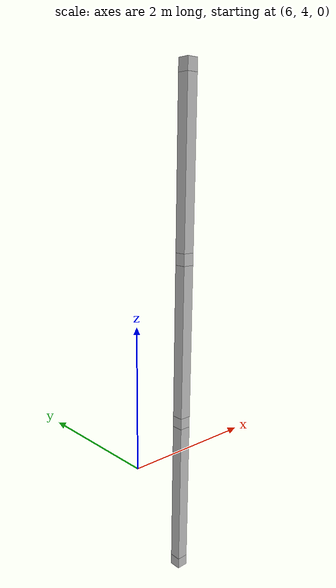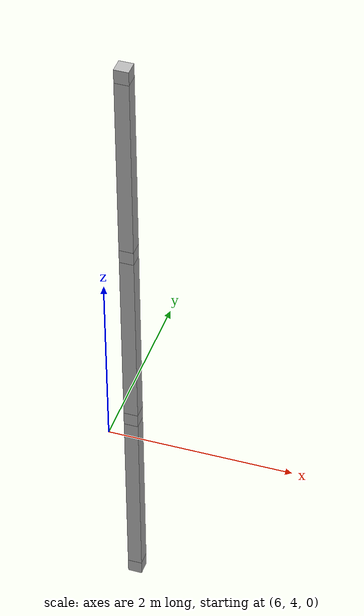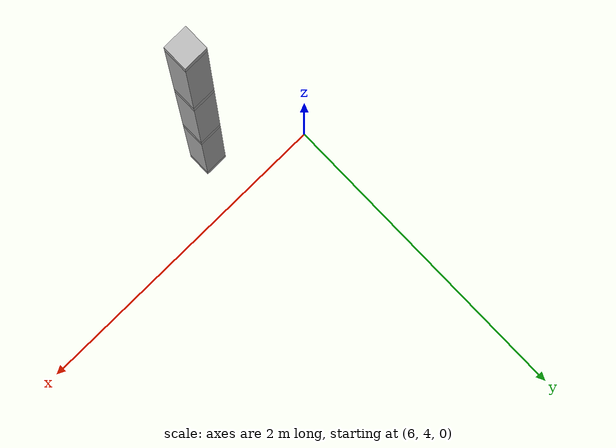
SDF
<sdf version="1.7">
 <world name="default">
  <model name="orthogonal_747_2.000.15_TS">
   <static>1</static>
   <link name="u_link_0_4_6">
    <inertial>
     <mass>1</mass>
     <inertia>
      <ixx>0.166667</ixx>
      <ixy>0</ixy>
      <ixz>0</ixz>
      <iyy>0.166667</iyy>
      <iyz>0</iyz>
      <izz>0.166667</izz>
     </inertia>
    </inertial>
    <pose>12.9 8.6 1.075 0 -0 0</pose>
    <visual name="visual_0">
     <laser_retro>736</laser_retro>
     <geometry><box><size>0.15 1e-06 0.15</size></box></geometry>
     <material>
      <script><name>Gazebo/Grey</name><uri>file://media/materials/scripts/gazebo.material</uri></script>
      <shader type="pixel"><normal_map>__default__</normal_map></shader>
      <ambient>0.678 0.498 0.659 1</ambient>
      <diffuse>0.7 0.7 0.7 1</diffuse>
      <specular>0.01 0.01 0.01 1</specular>
      <emissive>0 0 0 1</emissive>
     </material>
     <pose>0 -0.075 0 0 -0 0</pose>
     <transparency>1</transparency>
    </visual>
    <visual name="visual_1">
     <laser_retro>737</laser_retro>
     <geometry><box><size>0.15 1e-06 0.15</size></box></geometry>
     <material>
      <script><name>Gazebo/Grey</name><uri>file://media/materials/scripts/gazebo.material</uri></script>
      <shader type="pixel"><normal_map>__default__</normal_map></shader>
      <ambient>0.447 0.624 0.812 1</ambient>
      <diffuse>0.7 0.7 0.7 1</diffuse>
      <specular>0.01 0.01 0.01 1</specular>
      <emissive>0 0 0 1</emissive>
     </material>
     <pose>0 0.075 0 0 -0 0</pose>
     <transparency>1</transparency>
    </visual>
    <visual name="visual_2">
     <laser_retro>738</laser_retro>
     <geometry><box><size>0.15 0.15 1e-06</size></box></geometry>
     <material>
      <script><name>Gazebo/Grey</name><uri>file://media/materials/scripts/gazebo.material</uri></script>
      <shader type="pixel"><normal_map>__default__</normal_map></shader>
      <ambient>0.988 0.686 0.243 1</ambient>
      <diffuse>0.7 0.7 0.7 1</diffuse>
      <specular>0.01 0.01 0.01 1</specular>
      <emissive>0 0 0 1</emissive>
     </material>
     <pose>0 0 -0.075 0 -0 0</pose>
     <transparency>1</transparency>
    </visual>
    <visual name="visual_3">
     <laser_retro>739</laser_retro>
     <geometry><box><size>1e-06 0.15 0.15</size></box></geometry>
     <material>
      <script><name>Gazebo/Grey</name><uri>file://media/materials/scripts/gazebo.material</uri></script>
      <shader type="pixel"><normal_map>__default__</normal_map></shader>
      <ambient>0.988 0.914 0.31 1</ambient>
      <diffuse>0.7 0.7 0.7 1</diffuse>
      <specular>0.01 0.01 0.01 1</specular>
      <emissive>0 0 0 1</emissive>
     </material>
     <pose>0.075 0 0 0 -0 0</pose>
     <transparency>1</transparency>
    </visual>
    <visual name="visual_4">
     <laser_retro>740</laser_retro>
     <geometry><box><size>0.15 0.15 1e-06</size></box></geometry>
     <material>
      <script><name>Gazebo/Grey</name><uri>file://media/materials/scripts/gazebo.material</uri></script>
      <shader type="pixel"><normal_map>__default__</normal_map></shader>
      <ambient>0.937 0.161 0.161 1</ambient>
      <diffuse>0.7 0.7 0.7 1</diffuse>
      <specular>0.01 0.01 0.01 1</specular>
      <emissive>0 0 0 1</emissive>
     </material>
     <pose>0 0 0.075 0 -0 0</pose>
     <transparency>1</transparency>
    </visual>
    <visual name="visual_5">
     <laser_retro>741</laser_retro>
     <geometry><box><size>1e-06 0.15 0.15</size></box></geometry>
     <material>
      <script><name>Gazebo/Grey</name><uri>file://media/materials/scripts/gazebo.material</uri></script>
      <shader type="pixel"><normal_map>__default__</normal_map></shader>
      <ambient>0.541 0.886 0.204 1</ambient>
      <diffuse>0.7 0.7 0.7 1</diffuse>
      <specular>0.01 0.01 0.01 1</specular>
      <emissive>0 0 0 1</emissive>
     </material>
     <pose>-0.075 0 0 0 -0 0</pose>
     <transparency>1</transparency>
    </visual>
    <visual name="visual_texture">
     <geometry><box><size>0.149985 0.149985 0.149985</size></box></geometry>
     <material>
      <script>
       <uri>model://BASE_MODELS/simple_block_v2_textured/materials/scripts</uri>
       <uri>model://BASE_MODELS/simple_block_v2_textured/materials/textures</uri>
       <name>metal</name>
      </script>
     </material>
     <laser_retro>742</laser_retro>
    </visual>
    <collision name="collision">
     <geometry><box><size>0.15 0.15 0.15</size></box></geometry>
     <surface>
      <friction>
       <ode><mu>1</mu><mu2>1</mu2><fdir1>0 0 0</fdir1><slip1>0</slip1><slip2>0</slip2></ode>
       <torsional>
        <coefficient>1</coefficient>
        <patch_radius>0</patch_radius>
        <surface_radius>0</surface_radius>
        <use_patch_radius>1</use_patch_radius>
        <ode><slip>0</slip></ode>
       </torsional>
      </friction>
      <bounce><restitution_coefficient>0</restitution_coefficient><threshold>1e+06</threshold></bounce>
      <contact>
       <collide_without_contact>0</collide_without_contact>
       <collide_without_contact_bitmask>1</collide_without_contact_bitmask>
       <collide_bitmask>1</collide_bitmask>
       <ode>
        <soft_cfm>0</soft_cfm>
        <soft_erp>0.2</soft_erp>
        <kp>1e+13</kp>
        <kd>1</kd>
        <max_vel>0.01</max_vel>
        <min_depth>0</min_depth>
       </ode>
       <bullet>
        <split_impulse>1</split_impulse>
        <split_impulse_penetration_threshold>-0.01</split_impulse_penetration_threshold>
        <soft_cfm>0</soft_cfm>
        <soft_erp>0.2</soft_erp>
        <kp>1e+13</kp>
        <kd>1</kd>
       </bullet>
      </contact>
     </surface>
    </collision>
   </link>
   <link name="u_link_1_4_6">
    <inertial>
     <mass>1</mass>
     <inertia>
      <ixx>0.166667</ixx>
      <ixy>0</ixy>
      <ixz>0</ixz>
      <iyy>0.166667</iyy>
      <iyz>0</iyz>
      <izz>0.166667</izz>
     </inertia>
    </inertial>
    <pose>12.9 8.6 3.225 0 -0 0</pose>
    <visual name="visual_0">
     <laser_retro>1625</laser_retro>
     <geometry><box><size>0.15 1e-06 0.15</size></box></geometry>
     <material>
      <script><name>Gazebo/Grey</name><uri>file://media/materials/scripts/gazebo.material</uri></script>
      <shader type="pixel"><normal_map>__default__</normal_map></shader>
      <ambient>0.678 0.498 0.659 1</ambient>
      <diffuse>0.7 0.7 0.7 1</diffuse>
      <specular>0.01 0.01 0.01 1</specular>
      <emissive>0 0 0 1</emissive>
     </material>
     <pose>0 -0.075 0 0 -0 0</pose>
     <transparency>1</transparency>
    </visual>
    <visual name="visual_1">
     <laser_retro>1626</laser_retro>
     <geometry><box><size>0.15 1e-06 0.15</size></box></geometry>
     <material>
      <script><name>Gazebo/Grey</name><uri>file://media/materials/scripts/gazebo.material</uri></script>
      <shader type="pixel"><normal_map>__default__</normal_map></shader>
      <ambient>0.447 0.624 0.812 1</ambient>
      <diffuse>0.7 0.7 0.7 1</diffuse>
      <specular>0.01 0.01 0.01 1</specular>
      <emissive>0 0 0 1</emissive>
     </material>
     <pose>0 0.075 0 0 -0 0</pose>
     <transparency>1</transparency>
    </visual>
    <visual name="visual_2">
     <laser_retro>1627</laser_retro>
     <geometry><box><size>0.15 0.15 1e-06</size></box></geometry>
     <material>
      <script><name>Gazebo/Grey</name><uri>file://media/materials/scripts/gazebo.material</uri></script>
      <shader type="pixel"><normal_map>__default__</normal_map></shader>
      <ambient>0.988 0.686 0.243 1</ambient>
      <diffuse>0.7 0.7 0.7 1</diffuse>
      <specular>0.01 0.01 0.01 1</specular>
      <emissive>0 0 0 1</emissive>
     </material>
     <pose>0 0 -0.075 0 -0 0</pose>
     <transparency>1</transparency>
    </visual>
    <visual name="visual_3">
     <laser_retro>1628</laser_retro>
     <geometry><box><size>1e-06 0.15 0.15</size></box></geometry>
     <material>
      <script><name>Gazebo/Grey</name><uri>file://media/materials/scripts/gazebo.material</uri></script>
      <shader type="pixel"><normal_map>__default__</normal_map></shader>
      <ambient>0.988 0.914 0.31 1</ambient>
      <diffuse>0.7 0.7 0.7 1</diffuse>
      <specular>0.01 0.01 0.01 1</specular>
      <emissive>0 0 0 1</emissive>
     </material>
     <pose>0.075 0 0 0 -0 0</pose>
     <transparency>1</transparency>
    </visual>
    <visual name="visual_4">
     <laser_retro>1629</laser_retro>
     <geometry><box><size>0.15 0.15 1e-06</size></box></geometry>
     <material>
      <script><name>Gazebo/Grey</name><uri>file://media/materials/scripts/gazebo.material</uri></script>
      <shader type="pixel"><normal_map>__default__</normal_map></shader>
      <ambient>0.937 0.161 0.161 1</ambient>
      <diffuse>0.7 0.7 0.7 1</diffuse>
      <specular>0.01 0.01 0.01 1</specular>
      <emissive>0 0 0 1</emissive>
     </material>
     <pose>0 0 0.075 0 -0 0</pose>
     <transparency>1</transparency>
    </visual>
    <visual name="visual_5">
     <laser_retro>1630</laser_retro>
     <geometry><box><size>1e-06 0.15 0.15</size></box></geometry>
     <material>
      <script><name>Gazebo/Grey</name><uri>file://media/materials/scripts/gazebo.material</uri></script>
      <shader type="pixel"><normal_map>__default__</normal_map></shader>
      <ambient>0.541 0.886 0.204 1</ambient>
      <diffuse>0.7 0.7 0.7 1</diffuse>
      <specular>0.01 0.01 0.01 1</specular>
      <emissive>0 0 0 1</emissive>
     </material>
     <pose>-0.075 0 0 0 -0 0</pose>
     <transparency>1</transparency>
    </visual>
    <visual name="visual_texture">
     <geometry><box><size>0.149985 0.149985 0.149985</size></box></geometry>
     <material>
      <script>
       <uri>model://BASE_MODELS/simple_block_v2_textured/materials/scripts</uri>
       <uri>model://BASE_MODELS/simple_block_v2_textured/materials/textures</uri>
       <name>metal</name>
      </script>
     </material>
     <laser_retro>1631</laser_retro>
    </visual>
    <collision name="collision">
     <geometry><box><size>0.15 0.15 0.15</size></box></geometry>
     <surface>
      <friction>
       <ode><mu>1</mu><mu2>1</mu2><fdir1>0 0 0</fdir1><slip1>0</slip1><slip2>0</slip2></ode>
       <torsional>
        <coefficient>1</coefficient>
        <patch_radius>0</patch_radius>
        <surface_radius>0</surface_radius>
        <use_patch_radius>1</use_patch_radius>
        <ode><slip>0</slip></ode>
       </torsional>
      </friction>
      <bounce><restitution_coefficient>0</restitution_coefficient><threshold>1e+06</threshold></bounce>
      <contact>
       <collide_without_contact>0</collide_without_contact>
       <collide_without_contact_bitmask>1</collide_without_contact_bitmask>
       <collide_bitmask>1</collide_bitmask>
       <ode>
        <soft_cfm>0</soft_cfm>
        <soft_erp>0.2</soft_erp>
        <kp>1e+13</kp>
        <kd>1</kd>
        <max_vel>0.01</max_vel>
        <min_depth>0</min_depth>
       </ode>
       <bullet>
        <split_impulse>1</split_impulse>
        <split_impulse_penetration_threshold>-0.01</split_impulse_penetration_threshold>
        <soft_cfm>0</soft_cfm>
        <soft_erp>0.2</soft_erp>
        <kp>1e+13</kp>
        <kd>1</kd>
       </bullet>
      </contact>
     </surface>
    </collision>
   </link>
   <link name="z_link_1_4_6">
    <inertial>
     <mass>1</mass>
     <inertia>
      <ixx>0.166667</ixx>
      <ixy>0</ixy>
      <ixz>0</ixz>
      <iyy>0.166667</iyy>
      <iyz>0</iyz>
      <izz>0.166667</izz>
     </inertia>
    </inertial>
    <pose>12.9 8.6 2.15 0 -0 0</pose>
    <visual name="visual_0">
     <laser_retro>1632</laser_retro>
     <geometry><box><size>0.15 1e-06 2</size></box></geometry>
     <material>
      <script><name>Gazebo/Grey</name><uri>file://media/materials/scripts/gazebo.material</uri></script>
      <shader type="pixel"><normal_map>__default__</normal_map></shader>
      <ambient>0.678 0.498 0.659 1</ambient>
      <diffuse>0.7 0.7 0.7 1</diffuse>
      <specular>0.01 0.01 0.01 1</specular>
      <emissive>0 0 0 1</emissive>
     </material>
     <pose>0 -0.075 0 0 -0 0</pose>
     <transparency>1</transparency>
    </visual>
    <visual name="visual_1">
     <laser_retro>1633</laser_retro>
     <geometry><box><size>0.15 1e-06 2</size></box></geometry>
     <material>
      <script><name>Gazebo/Grey</name><uri>file://media/materials/scripts/gazebo.material</uri></script>
      <shader type="pixel"><normal_map>__default__</normal_map></shader>
      <ambient>0.447 0.624 0.812 1</ambient>
      <diffuse>0.7 0.7 0.7 1</diffuse>
      <specular>0.01 0.01 0.01 1</specular>
      <emissive>0 0 0 1</emissive>
     </material>
     <pose>0 0.075 0 0 -0 0</pose>
     <transparency>1</transparency>
    </visual>
    <visual name="visual_2">
     <laser_retro>1634</laser_retro>
     <geometry><box><size>0.15 0.15 1e-06</size></box></geometry>
     <material>
      <script><name>Gazebo/Grey</name><uri>file://media/materials/scripts/gazebo.material</uri></script>
      <shader type="pixel"><normal_map>__default__</normal_map></shader>
      <ambient>0.988 0.686 0.243 1</ambient>
      <diffuse>0.7 0.7 0.7 1</diffuse>
      <specular>0.01 0.01 0.01 1</specular>
      <emissive>0 0 0 1</emissive>
     </material>
     <pose>0 0 -1 0 -0 0</pose>
     <transparency>1</transparency>
    </visual>
    <visual name="visual_3">
     <laser_retro>1635</laser_retro>
     <geometry><box><size>1e-06 0.15 2</size></box></geometry>
     <material>
      <script><name>Gazebo/Grey</name><uri>file://media/materials/scripts/gazebo.material</uri></script>
      <shader type="pixel"><normal_map>__default__</normal_map></shader>
      <ambient>0.988 0.914 0.31 1</ambient>
      <diffuse>0.7 0.7 0.7 1</diffuse>
      <specular>0.01 0.01 0.01 1</specular>
      <emissive>0 0 0 1</emissive>
     </material>
     <pose>0.075 0 0 0 -0 0</pose>
     <transparency>1</transparency>
    </visual>
    <visual name="visual_4">
     <laser_retro>1636</laser_retro>
     <geometry><box><size>0.15 0.15 1e-06</size></box></geometry>
     <material>
      <script><name>Gazebo/Grey</name><uri>file://media/materials/scripts/gazebo.material</uri></script>
      <shader type="pixel"><normal_map>__default__</normal_map></shader>
      <ambient>0.937 0.161 0.161 1</ambient>
      <diffuse>0.7 0.7 0.7 1</diffuse>
      <specular>0.01 0.01 0.01 1</specular>
      <emissive>0 0 0 1</emissive>
     </material>
     <pose>0 0 1 0 -0 0</pose>
     <transparency>1</transparency>
    </visual>
    <visual name="visual_5">
     <laser_retro>1637</laser_retro>
     <geometry><box><size>1e-06 0.15 2</size></box></geometry>
     <material>
      <script><name>Gazebo/Grey</name><uri>file://media/materials/scripts/gazebo.material</uri></script>
      <shader type="pixel"><normal_map>__default__</normal_map></shader>
      <ambient>0.541 0.886 0.204 1</ambient>
      <diffuse>0.7 0.7 0.7 1</diffuse>
      <specular>0.01 0.01 0.01 1</specular>
      <emissive>0 0 0 1</emissive>
     </material>
     <pose>-0.075 0 0 0 -0 0</pose>
     <transparency>1</transparency>
    </visual>
    <visual name="visual_texture">
     <geometry><box><size>0.149985 0.149985 1.9998</size></box></geometry>
     <material>
      <script>
       <uri>model://BASE_MODELS/simple_block_v2_textured/materials/scripts</uri>
       <uri>model://BASE_MODELS/simple_block_v2_textured/materials/textures</uri>
       <name>metal</name>
      </script>
     </material>
     <laser_retro>1638</laser_retro>
    </visual>
    <collision name="collision">
     <geometry><box><size>0.15 0.15 2</size></box></geometry>
     <surface>
      <friction>
       <ode><mu>1</mu><mu2>1</mu2><fdir1>0 0 0</fdir1><slip1>0</slip1><slip2>0</slip2></ode>
       <torsional>
        <coefficient>1</coefficient>
        <patch_radius>0</patch_radius>
        <surface_radius>0</surface_radius>
        <use_patch_radius>1</use_patch_radius>
        <ode><slip>0</slip></ode>
       </torsional>
      </friction>
      <bounce><restitution_coefficient>0</restitution_coefficient><threshold>1e+06</threshold></bounce>
      <contact>
       <collide_without_contact>0</collide_without_contact>
       <collide_without_contact_bitmask>1</collide_without_contact_bitmask>
       <collide_bitmask>1</collide_bitmask>
       <ode>
        <soft_cfm>0</soft_cfm>
        <soft_erp>0.2</soft_erp>
        <kp>1e+13</kp>
        <kd>1</kd>
        <max_vel>0.01</max_vel>
        <min_depth>0</min_depth>
       </ode>
       <bullet>
        <split_impulse>1</split_impulse>
        <split_impulse_penetration_threshold>-0.01</split_impulse_penetration_threshold>
        <soft_cfm>0</soft_cfm>
        <soft_erp>0.2</soft_erp>
        <kp>1e+13</kp>
        <kd>1</kd>
       </bullet>
      </contact>
     </surface>
    </collision>
   </link>
   <link name="u_link_2_4_6">
    <inertial>
     <mass>1</mass>
     <inertia>
      <ixx>0.166667</ixx>
      <ixy>0</ixy>
      <ixz>0</ixz>
      <iyy>0.166667</iyy>
      <iyz>0</iyz>
      <izz>0.166667</izz>
     </inertia>
    </inertial>
    <pose>12.9 8.6 5.375 0 -0 0</pose>
    <visual name="visual_0">
     <laser_retro>2528</laser_retro>
     <geometry><box><size>0.15 1e-06 0.15</size></box></geometry>
     <material>
      <script><name>Gazebo/Grey</name><uri>file://media/materials/scripts/gazebo.material</uri></script>
      <shader type="pixel"><normal_map>__default__</normal_map></shader>
      <ambient>0.678 0.498 0.659 1</ambient>
      <diffuse>0.7 0.7 0.7 1</diffuse>
      <specular>0.01 0.01 0.01 1</specular>
      <emissive>0 0 0 1</emissive>
     </material>
     <pose>0 -0.075 0 0 -0 0</pose>
     <transparency>1</transparency>
    </visual>
    <visual name="visual_1">
     <laser_retro>2529</laser_retro>
     <geometry><box><size>0.15 1e-06 0.15</size></box></geometry>
     <material>
      <script><name>Gazebo/Grey</name><uri>file://media/materials/scripts/gazebo.material</uri></script>
      <shader type="pixel"><normal_map>__default__</normal_map></shader>
      <ambient>0.447 0.624 0.812 1</ambient>
      <diffuse>0.7 0.7 0.7 1</diffuse>
      <specular>0.01 0.01 0.01 1</specular>
      <emissive>0 0 0 1</emissive>
     </material>
     <pose>0 0.075 0 0 -0 0</pose>
     <transparency>1</transparency>
    </visual>
    <visual name="visual_2">
     <laser_retro>2530</laser_retro>
     <geometry><box><size>0.15 0.15 1e-06</size></box></geometry>
     <material>
      <script><name>Gazebo/Grey</name><uri>file://media/materials/scripts/gazebo.material</uri></script>
      <shader type="pixel"><normal_map>__default__</normal_map></shader>
      <ambient>0.988 0.686 0.243 1</ambient>
      <diffuse>0.7 0.7 0.7 1</diffuse>
      <specular>0.01 0.01 0.01 1</specular>
      <emissive>0 0 0 1</emissive>
     </material>
     <pose>0 0 -0.075 0 -0 0</pose>
     <transparency>1</transparency>
    </visual>
    <visual name="visual_3">
     <laser_retro>2531</laser_retro>
     <geometry><box><size>1e-06 0.15 0.15</size></box></geometry>
     <material>
      <script><name>Gazebo/Grey</name><uri>file://media/materials/scripts/gazebo.material</uri></script>
      <shader type="pixel"><normal_map>__default__</normal_map></shader>
      <ambient>0.988 0.914 0.31 1</ambient>
      <diffuse>0.7 0.7 0.7 1</diffuse>
      <specular>0.01 0.01 0.01 1</specular>
      <emissive>0 0 0 1</emissive>
     </material>
     <pose>0.075 0 0 0 -0 0</pose>
     <transparency>1</transparency>
    </visual>
    <visual name="visual_4">
     <laser_retro>2532</laser_retro>
     <geometry><box><size>0.15 0.15 1e-06</size></box></geometry>
     <material>
      <script><name>Gazebo/Grey</name><uri>file://media/materials/scripts/gazebo.material</uri></script>
      <shader type="pixel"><normal_map>__default__</normal_map></shader>
      <ambient>0.937 0.161 0.161 1</ambient>
      <diffuse>0.7 0.7 0.7 1</diffuse>
      <specular>0.01 0.01 0.01 1</specular>
      <emissive>0 0 0 1</emissive>
     </material>
     <pose>0 0 0.075 0 -0 0</pose>
     <transparency>1</transparency>
    </visual>
    <visual name="visual_5">
     <laser_retro>2533</laser_retro>
     <geometry><box><size>1e-06 0.15 0.15</size></box></geometry>
     <material>
      <script><name>Gazebo/Grey</name><uri>file://media/materials/scripts/gazebo.material</uri></script>
      <shader type="pixel"><normal_map>__default__</normal_map></shader>
      <ambient>0.541 0.886 0.204 1</ambient>
      <diffuse>0.7 0.7 0.7 1</diffuse>
      <specular>0.01 0.01 0.01 1</specular>
      <emissive>0 0 0 1</emissive>
     </material>
     <pose>-0.075 0 0 0 -0 0</pose>
     <transparency>1</transparency>
    </visual>
    <visual name="visual_texture">
     <geometry><box><size>0.149985 0.149985 0.149985</size></box></geometry>
     <material>
      <script>
       <uri>model://BASE_MODELS/simple_block_v2_textured/materials/scripts</uri>
       <uri>model://BASE_MODELS/simple_block_v2_textured/materials/textures</uri>
       <name>metal</name>
      </script>
     </material>
     <laser_retro>2534</laser_retro>
    </visual>
    <collision name="collision">
     <geometry><box><size>0.15 0.15 0.15</size></box></geometry>
     <surface>
      <friction>
       <ode><mu>1</mu><mu2>1</mu2><fdir1>0 0 0</fdir1><slip1>0</slip1><slip2>0</slip2></ode>
       <torsional>
        <coefficient>1</coefficient>
        <patch_radius>0</patch_radius>
        <surface_radius>0</surface_radius>
        <use_patch_radius>1</use_patch_radius>
        <ode><slip>0</slip></ode>
       </torsional>
      </friction>
      <bounce><restitution_coefficient>0</restitution_coefficient><threshold>1e+06</threshold></bounce>
      <contact>
       <collide_without_contact>0</collide_without_contact>
       <collide_without_contact_bitmask>1</collide_without_contact_bitmask>
       <collide_bitmask>1</collide_bitmask>
       <ode>
        <soft_cfm>0</soft_cfm>
        <soft_erp>0.2</soft_erp>
        <kp>1e+13</kp>
        <kd>1</kd>
        <max_vel>0.01</max_vel>
        <min_depth>0</min_depth>
       </ode>
       <bullet>
        <split_impulse>1</split_impulse>
        <split_impulse_penetration_threshold>-0.01</split_impulse_penetration_threshold>
        <soft_cfm>0</soft_cfm>
        <soft_erp>0.2</soft_erp>
        <kp>1e+13</kp>
        <kd>1</kd>
       </bullet>
      </contact>
     </surface>
    </collision>
   </link>
   <link name="z_link_2_4_6">
    <inertial>
     <mass>1</mass>
     <inertia>
      <ixx>0.166667</ixx>
      <ixy>0</ixy>
      <ixz>0</ixz>
      <iyy>0.166667</iyy>
      <iyz>0</iyz>
      <izz>0.166667</izz>
     </inertia>
    </inertial>
    <pose>12.9 8.6 4.3 0 -0 0</pose>
    <visual name="visual_0">
     <laser_retro>2535</laser_retro>
     <geometry><box><size>0.15 1e-06 2</size></box></geometry>
     <material>
      <script><name>Gazebo/Grey</name><uri>file://media/materials/scripts/gazebo.material</uri></script>
      <shader type="pixel"><normal_map>__default__</normal_map></shader>
      <ambient>0.678 0.498 0.659 1</ambient>
      <diffuse>0.7 0.7 0.7 1</diffuse>
      <specular>0.01 0.01 0.01 1</specular>
      <emissive>0 0 0 1</emissive>
     </material>
     <pose>0 -0.075 0 0 -0 0</pose>
     <transparency>1</transparency>
    </visual>
    <visual name="visual_1">
     <laser_retro>2536</laser_retro>
     <geometry><box><size>0.15 1e-06 2</size></box></geometry>
     <material>
      <script><name>Gazebo/Grey</name><uri>file://media/materials/scripts/gazebo.material</uri></script>
      <shader type="pixel"><normal_map>__default__</normal_map></shader>
      <ambient>0.447 0.624 0.812 1</ambient>
      <diffuse>0.7 0.7 0.7 1</diffuse>
      <specular>0.01 0.01 0.01 1</specular>
      <emissive>0 0 0 1</emissive>
     </material>
     <pose>0 0.075 0 0 -0 0</pose>
     <transparency>1</transparency>
    </visual>
    <visual name="visual_2">
     <laser_retro>2537</laser_retro>
     <geometry><box><size>0.15 0.15 1e-06</size></box></geometry>
     <material>
      <script><name>Gazebo/Grey</name><uri>file://media/materials/scripts/gazebo.material</uri></script>
      <shader type="pixel"><normal_map>__default__</normal_map></shader>
      <ambient>0.988 0.686 0.243 1</ambient>
      <diffuse>0.7 0.7 0.7 1</diffuse>
      <specular>0.01 0.01 0.01 1</specular>
      <emissive>0 0 0 1</emissive>
     </material>
     <pose>0 0 -1 0 -0 0</pose>
     <transparency>1</transparency>
    </visual>
    <visual name="visual_3">
     <laser_retro>2538</laser_retro>
     <geometry><box><size>1e-06 0.15 2</size></box></geometry>
     <material>
      <script><name>Gazebo/Grey</name><uri>file://media/materials/scripts/gazebo.material</uri></script>
      <shader type="pixel"><normal_map>__default__</normal_map></shader>
      <ambient>0.988 0.914 0.31 1</ambient>
      <diffuse>0.7 0.7 0.7 1</diffuse>
      <specular>0.01 0.01 0.01 1</specular>
      <emissive>0 0 0 1</emissive>
     </material>
     <pose>0.075 0 0 0 -0 0</pose>
     <transparency>1</transparency>
    </visual>
    <visual name="visual_4">
     <laser_retro>2539</laser_retro>
     <geometry><box><size>0.15 0.15 1e-06</size></box></geometry>
     <material>
      <script><name>Gazebo/Grey</name><uri>file://media/materials/scripts/gazebo.material</uri></script>
      <shader type="pixel"><normal_map>__default__</normal_map></shader>
      <ambient>0.937 0.161 0.161 1</ambient>
      <diffuse>0.7 0.7 0.7 1</diffuse>
      <specular>0.01 0.01 0.01 1</specular>
      <emissive>0 0 0 1</emissive>
     </material>
     <pose>0 0 1 0 -0 0</pose>
     <transparency>1</transparency>
    </visual>
    <visual name="visual_5">
     <laser_retro>2540</laser_retro>
     <geometry><box><size>1e-06 0.15 2</size></box></geometry>
     <material>
      <script><name>Gazebo/Grey</name><uri>file://media/materials/scripts/gazebo.material</uri></script>
      <shader type="pixel"><normal_map>__default__</normal_map></shader>
      <ambient>0.541 0.886 0.204 1</ambient>
      <diffuse>0.7 0.7 0.7 1</diffuse>
      <specular>0.01 0.01 0.01 1</specular>
      <emissive>0 0 0 1</emissive>
     </material>
     <pose>-0.075 0 0 0 -0 0</pose>
     <transparency>1</transparency>
    </visual>
    <visual name="visual_texture">
     <geometry><box><size>0.149985 0.149985 1.9998</size></box></geometry>
     <material>
      <script>
       <uri>model://BASE_MODELS/simple_block_v2_textured/materials/scripts</uri>
       <uri>model://BASE_MODELS/simple_block_v2_textured/materials/textures</uri>
       <name>metal</name>
      </script>
     </material>
     <laser_retro>2541</laser_retro>
    </visual>
    <collision name="collision">
     <geometry><box><size>0.15 0.15 2</size></box></geometry>
     <surface>
      <friction>
       <ode><mu>1</mu><mu2>1</mu2><fdir1>0 0 0</fdir1><slip1>0</slip1><slip2>0</slip2></ode>
       <torsional>
        <coefficient>1</coefficient>
        <patch_radius>0</patch_radius>
        <surface_radius>0</surface_radius>
        <use_patch_radius>1</use_patch_radius>
        <ode><slip>0</slip></ode>
       </torsional>
      </friction>
      <bounce><restitution_coefficient>0</restitution_coefficient><threshold>1e+06</threshold></bounce>
      <contact>
       <collide_without_contact>0</collide_without_contact>
       <collide_without_contact_bitmask>1</collide_without_contact_bitmask>
       <collide_bitmask>1</collide_bitmask>
       <ode>
        <soft_cfm>0</soft_cfm>
        <soft_erp>0.2</soft_erp>
        <kp>1e+13</kp>
        <kd>1</kd>
        <max_vel>0.01</max_vel>
        <min_depth>0</min_depth>
       </ode>
       <bullet>
        <split_impulse>1</split_impulse>
        <split_impulse_penetration_threshold>-0.01</split_impulse_penetration_threshold>
        <soft_cfm>0</soft_cfm>
        <soft_erp>0.2</soft_erp>
        <kp>1e+13</kp>
        <kd>1</kd>
       </bullet>
      </contact>
     </surface>
    </collision>
   </link>
   <link name="u_link_3_4_6">
    <inertial>
     <mass>1</mass>
     <inertia>
      <ixx>0.166667</ixx>
      <ixy>0</ixy>
      <ixz>0</ixz>
      <iyy>0.166667</iyy>
      <iyz>0</iyz>
      <izz>0.166667</izz>
     </inertia>
    </inertial>
    <pose>12.9 8.6 7.525 0 -0 0</pose>
    <visual name="visual_0">
     <laser_retro>3431</laser_retro>
     <geometry><box><size>0.15 1e-06 0.15</size></box></geometry>
     <material>
      <script><name>Gazebo/Grey</name><uri>file://media/materials/scripts/gazebo.material</uri></script>
      <shader type="pixel"><normal_map>__default__</normal_map></shader>
      <ambient>0.678 0.498 0.659 1</ambient>
      <diffuse>0.7 0.7 0.7 1</diffuse>
      <specular>0.01 0.01 0.01 1</specular>
      <emissive>0 0 0 1</emissive>
     </material>
     <pose>0 -0.075 0 0 -0 0</pose>
     <transparency>1</transparency>
    </visual>
    <visual name="visual_1">
     <laser_retro>3432</laser_retro>
     <geometry><box><size>0.15 1e-06 0.15</size></box></geometry>
     <material>
      <script><name>Gazebo/Grey</name><uri>file://media/materials/scripts/gazebo.material</uri></script>
      <shader type="pixel"><normal_map>__default__</normal_map></shader>
      <ambient>0.447 0.624 0.812 1</ambient>
      <diffuse>0.7 0.7 0.7 1</diffuse>
      <specular>0.01 0.01 0.01 1</specular>
      <emissive>0 0 0 1</emissive>
     </material>
     <pose>0 0.075 0 0 -0 0</pose>
     <transparency>1</transparency>
    </visual>
    <visual name="visual_2">
     <laser_retro>3433</laser_retro>
     <geometry><box><size>0.15 0.15 1e-06</size></box></geometry>
     <material>
      <script><name>Gazebo/Grey</name><uri>file://media/materials/scripts/gazebo.material</uri></script>
      <shader type="pixel"><normal_map>__default__</normal_map></shader>
      <ambient>0.988 0.686 0.243 1</ambient>
      <diffuse>0.7 0.7 0.7 1</diffuse>
      <specular>0.01 0.01 0.01 1</specular>
      <emissive>0 0 0 1</emissive>
     </material>
     <pose>0 0 -0.075 0 -0 0</pose>
     <transparency>1</transparency>
    </visual>
    <visual name="visual_3">
     <laser_retro>3434</laser_retro>
     <geometry><box><size>1e-06 0.15 0.15</size></box></geometry>
     <material>
      <script><name>Gazebo/Grey</name><uri>file://media/materials/scripts/gazebo.material</uri></script>
      <shader type="pixel"><normal_map>__default__</normal_map></shader>
      <ambient>0.988 0.914 0.31 1</ambient>
      <diffuse>0.7 0.7 0.7 1</diffuse>
      <specular>0.01 0.01 0.01 1</specular>
      <emissive>0 0 0 1</emissive>
     </material>
     <pose>0.075 0 0 0 -0 0</pose>
     <transparency>1</transparency>
    </visual>
    <visual name="visual_4">
     <laser_retro>3435</laser_retro>
     <geometry><box><size>0.15 0.15 1e-06</size></box></geometry>
     <material>
      <script><name>Gazebo/Grey</name><uri>file://media/materials/scripts/gazebo.material</uri></script>
      <shader type="pixel"><normal_map>__default__</normal_map></shader>
      <ambient>0.937 0.161 0.161 1</ambient>
      <diffuse>0.7 0.7 0.7 1</diffuse>
      <specular>0.01 0.01 0.01 1</specular>
      <emissive>0 0 0 1</emissive>
     </material>
     <pose>0 0 0.075 0 -0 0</pose>
     <transparency>1</transparency>
    </visual>
    <visual name="visual_5">
     <laser_retro>3436</laser_retro>
     <geometry><box><size>1e-06 0.15 0.15</size></box></geometry>
     <material>
      <script><name>Gazebo/Grey</name><uri>file://media/materials/scripts/gazebo.material</uri></script>
      <shader type="pixel"><normal_map>__default__</normal_map></shader>
      <ambient>0.541 0.886 0.204 1</ambient>
      <diffuse>0.7 0.7 0.7 1</diffuse>
      <specular>0.01 0.01 0.01 1</specular>
      <emissive>0 0 0 1</emissive>
     </material>
     <pose>-0.075 0 0 0 -0 0</pose>
     <transparency>1</transparency>
    </visual>
    <visual name="visual_texture">
     <geometry><box><size>0.149985 0.149985 0.149985</size></box></geometry>
     <material>
      <script>
       <uri>model://BASE_MODELS/simple_block_v2_textured/materials/scripts</uri>
       <uri>model://BASE_MODELS/simple_block_v2_textured/materials/textures</uri>
       <name>metal</name>
      </script>
     </material>
     <laser_retro>3437</laser_retro>
    </visual>
    <collision name="collision">
     <geometry><box><size>0.15 0.15 0.15</size></box></geometry>
     <surface>
      <friction>
       <ode><mu>1</mu><mu2>1</mu2><fdir1>0 0 0</fdir1><slip1>0</slip1><slip2>0</slip2></ode>
       <torsional>
        <coefficient>1</coefficient>
        <patch_radius>0</patch_radius>
        <surface_radius>0</surface_radius>
        <use_patch_radius>1</use_patch_radius>
        <ode><slip>0</slip></ode>
       </torsional>
      </friction>
      <bounce><restitution_coefficient>0</restitution_coefficient><threshold>1e+06</threshold></bounce>
      <contact>
       <collide_without_contact>0</collide_without_contact>
       <collide_without_contact_bitmask>1</collide_without_contact_bitmask>
       <collide_bitmask>1</collide_bitmask>
       <ode>
        <soft_cfm>0</soft_cfm>
        <soft_erp>0.2</soft_erp>
        <kp>1e+13</kp>
        <kd>1</kd>
        <max_vel>0.01</max_vel>
        <min_depth>0</min_depth>
       </ode>
       <bullet>
        <split_impulse>1</split_impulse>
        <split_impulse_penetration_threshold>-0.01</split_impulse_penetration_threshold>
        <soft_cfm>0</soft_cfm>
        <soft_erp>0.2</soft_erp>
        <kp>1e+13</kp>
        <kd>1</kd>
       </bullet>
      </contact>
     </surface>
    </collision>
   </link>
   <link name="z_link_3_4_6">
    <inertial>
     <mass>1</mass>
     <inertia>
      <ixx>0.166667</ixx>
      <ixy>0</ixy>
      <ixz>0</ixz>
      <iyy>0.166667</iyy>
      <iyz>0</iyz>
      <izz>0.166667</izz>
     </inertia>
    </inertial>
    <pose>12.9 8.6 6.45 0 -0 0</pose>
    <visual name="visual_0">
     <laser_retro>3438</laser_retro>
     <geometry><box><size>0.15 1e-06 2</size></box></geometry>
     <material>
      <script><name>Gazebo/Grey</name><uri>file://media/materials/scripts/gazebo.material</uri></script>
      <shader type="pixel"><normal_map>__default__</normal_map></shader>
      <ambient>0.678 0.498 0.659 1</ambient>
      <diffuse>0.7 0.7 0.7 1</diffuse>
      <specular>0.01 0.01 0.01 1</specular>
      <emissive>0 0 0 1</emissive>
     </material>
     <pose>0 -0.075 0 0 -0 0</pose>
     <transparency>1</transparency>
    </visual>
    <visual name="visual_1">
     <laser_retro>3439</laser_retro>
     <geometry><box><size>0.15 1e-06 2</size></box></geometry>
     <material>
      <script><name>Gazebo/Grey</name><uri>file://media/materials/scripts/gazebo.material</uri></script>
      <shader type="pixel"><normal_map>__default__</normal_map></shader>
      <ambient>0.447 0.624 0.812 1</ambient>
      <diffuse>0.7 0.7 0.7 1</diffuse>
      <specular>0.01 0.01 0.01 1</specular>
      <emissive>0 0 0 1</emissive>
     </material>
     <pose>0 0.075 0 0 -0 0</pose>
     <transparency>1</transparency>
    </visual>
    <visual name="visual_2">
     <laser_retro>3440</laser_retro>
     <geometry><box><size>0.15 0.15 1e-06</size></box></geometry>
     <material>
      <script><name>Gazebo/Grey</name><uri>file://media/materials/scripts/gazebo.material</uri></script>
      <shader type="pixel"><normal_map>__default__</normal_map></shader>
      <ambient>0.988 0.686 0.243 1</ambient>
      <diffuse>0.7 0.7 0.7 1</diffuse>
      <specular>0.01 0.01 0.01 1</specular>
      <emissive>0 0 0 1</emissive>
     </material>
     <pose>0 0 -1 0 -0 0</pose>
     <transparency>1</transparency>
    </visual>
    <visual name="visual_3">
     <laser_retro>3441</laser_retro>
     <geometry><box><size>1e-06 0.15 2</size></box></geometry>
     <material>
      <script><name>Gazebo/Grey</name><uri>file://media/materials/scripts/gazebo.material</uri></script>
      <shader type="pixel"><normal_map>__default__</normal_map></shader>
      <ambient>0.988 0.914 0.31 1</ambient>
      <diffuse>0.7 0.7 0.7 1</diffuse>
      <specular>0.01 0.01 0.01 1</specular>
      <emissive>0 0 0 1</emissive>
     </material>
     <pose>0.075 0 0 0 -0 0</pose>
     <transparency>1</transparency>
    </visual>
    <visual name="visual_4">
     <laser_retro>3442</laser_retro>
     <geometry><box><size>0.15 0.15 1e-06</size></box></geometry>
     <material>
      <script><name>Gazebo/Grey</name><uri>file://media/materials/scripts/gazebo.material</uri></script>
      <shader type="pixel"><normal_map>__default__</normal_map></shader>
      <ambient>0.937 0.161 0.161 1</ambient>
      <diffuse>0.7 0.7 0.7 1</diffuse>
      <specular>0.01 0.01 0.01 1</specular>
      <emissive>0 0 0 1</emissive>
     </material>
     <pose>0 0 1 0 -0 0</pose>
     <transparency>1</transparency>
    </visual>
    <visual name="visual_5">
     <laser_retro>3443</laser_retro>
     <geometry><box><size>1e-06 0.15 2</size></box></geometry>
     <material>
      <script><name>Gazebo/Grey</name><uri>file://media/materials/scripts/gazebo.material</uri></script>
      <shader type="pixel"><normal_map>__default__</normal_map></shader>
      <ambient>0.541 0.886 0.204 1</ambient>
      <diffuse>0.7 0.7 0.7 1</diffuse>
      <specular>0.01 0.01 0.01 1</specular>
      <emissive>0 0 0 1</emissive>
     </material>
     <pose>-0.075 0 0 0 -0 0</pose>
     <transparency>1</transparency>
    </visual>
    <visual name="visual_texture">
     <geometry><box><size>0.149985 0.149985 1.9998</size></box></geometry>
     <material>
      <script>
       <uri>model://BASE_MODELS/simple_block_v2_textured/materials/scripts</uri>
       <uri>model://BASE_MODELS/simple_block_v2_textured/materials/textures</uri>
       <name>metal</name>
      </script>
     </material>
     <laser_retro>3444</laser_retro>
    </visual>
    <collision name="collision">
     <geometry><box><size>0.15 0.15 2</size></box></geometry>
     <surface>
      <friction>
       <ode><mu>1</mu><mu2>1</mu2><fdir1>0 0 0</fdir1><slip1>0</slip1><slip2>0</slip2></ode>
       <torsional>
        <coefficient>1</coefficient>
        <patch_radius>0</patch_radius>
        <surface_radius>0</surface_radius>
        <use_patch_radius>1</use_patch_radius>
        <ode><slip>0</slip></ode>
       </torsional>
      </friction>
      <bounce><restitution_coefficient>0</restitution_coefficient><threshold>1e+06</threshold></bounce>
      <contact>
       <collide_without_contact>0</collide_without_contact>
       <collide_without_contact_bitmask>1</collide_without_contact_bitmask>
       <collide_bitmask>1</collide_bitmask>
       <ode>
        <soft_cfm>0</soft_cfm>
        <soft_erp>0.2</soft_erp>
        <kp>1e+13</kp>
        <kd>1</kd>
        <max_vel>0.01</max_vel>
        <min_depth>0</min_depth>
       </ode>
       <bullet>
        <split_impulse>1</split_impulse>
        <split_impulse_penetration_threshold>-0.01</split_impulse_penetration_threshold>
        <soft_cfm>0</soft_cfm>
        <soft_erp>0.2</soft_erp>
        <kp>1e+13</kp>
        <kd>1</kd>
       </bullet>
      </contact>
     </surface>
    </collision>
   </link>
   <pose>-6.47624 -5 -2.5 0 -0 0</pose>
  </model>
 </world>
</sdf>
